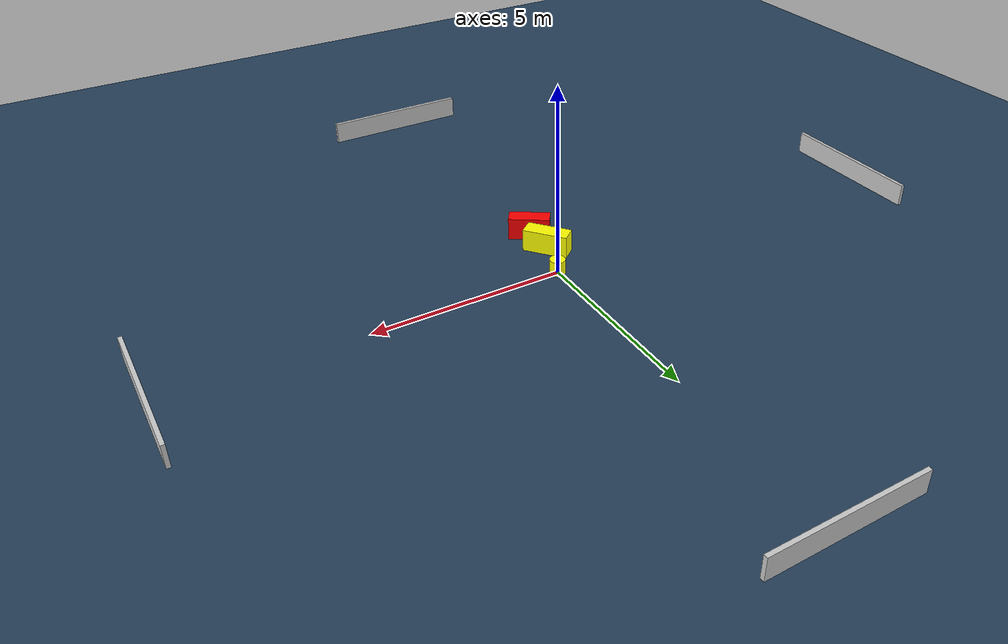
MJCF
<?xml version="1.0" ?>
<mujoco model="generated_environment">
  <option timestep="0.01" integrator="RK4" cone="elliptic"/>
  <default>
    <geom density="1"/>
  </default>
  <asset>
    <texture builtin="gradient" height="3072" name="skybox" rgb1="0.3 0.5 0.7" rgb2="0 0 0" type="skybox" width="512"/>
    <texture builtin="checker" height="300" name="groundplane" rgb1="0.2 0.3 0.4" rgb2="0.1 0.2 0.3" type="2d" width="300"/>
    <material name="groundplane" reflectance="0.2" texrepeat="5 5" texture="groundplane"/>
  </asset>
  <worldbody>
    <light dir="0 0 -1" directional="true" pos="0 0 1.5"/>
    <geom condim="3" friction="0.5 0.005 0.001" material="groundplane" name="floor" pos="0 0 0" size="0 0 0.05" type="plane"/>
    <body name="walls">
      <geom name="wall_1" condim="4" pos="-10.0 0.0 0.3" rgba="0.800000011920929 0.800000011920929 0.800000011920929 1.0" size="0.05 2.0 0.3" type="box"/>
      <geom name="wall_2" condim="4" pos="10.0 0.0 0.3" rgba="0.800000011920929 0.800000011920929 0.800000011920929 1.0" size="0.05 2.0 0.3" type="box"/>
      <geom name="wall_3" condim="4" pos="0.0 -10.0 0.3" rgba="0.800000011920929 0.800000011920929 0.800000011920929 1.0" size="2.0 0.05 0.3" type="box"/>
      <geom name="wall_4" condim="4" pos="0.0 10.0 0.3" rgba="0.800000011920929 0.800000011920929 0.800000011920929 1.0" size="2.0 0.05 0.3" type="box"/>
    </body>
    <body name="robot">
      <joint name="joint_x" type="slide" pos="0 0 0" axis="1 0 0"/>
      <joint name="joint_y" type="slide" pos="0 0 0" axis="0 1 0"/>
      <geom name="robot" type="cylinder" pos="0.0 0.0 0.2" size="0.2 0.2 0.0" mass="5.0" friction="1.0 0.005 0.0001" condim="4" rgba="1.0 1.0 0.0 1.0"/>
    </body>
    <body name="obstacle_1_movable">
      <geom name="obstacle_1_movable" condim="4" pos="-0.3311344495137074 -1.0581880355560407 0.3" euler="0 0 38.96909009733317" friction="0.0 0.005 0.001" rgba="1.0 1.0 0.0 1.0" size="0.22134479031332308 0.5937518126632915 0.3" type="box" mass="0.1"/>
      <joint type="free"/>
    </body>
    <body name="obstacle_2_static">
      <geom name="obstacle_2_static" condim="4" pos="-0.30273013871704424 -1.931075486621495 0.3" euler="0 0 235.93980227087866" friction="0.0 0.005 0.001" rgba="1.0 0.0 0.0 1.0" size="0.20644959555043474 0.5421969572314491 0.3" type="box"/>
    </body>
  </worldbody>
  <actuator>
    <motor name="actuator_x" joint="joint_x" gear="1" ctrlrange="-1 1"/>
    <motor name="actuator_y" joint="joint_y" gear="1" ctrlrange="-1 1"/>
  </actuator>
</mujoco>
